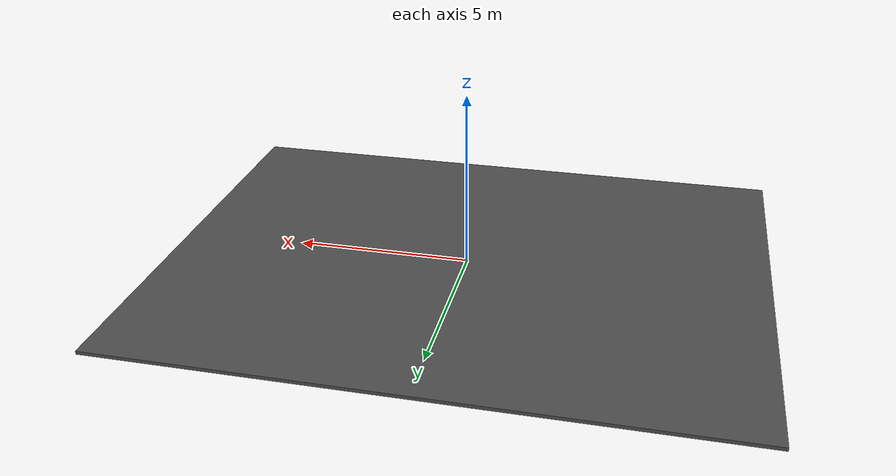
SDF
<?xml version="1.0" ?>
<sdf version="1.5">
  <model name="asphalt_plane">
    <static>true</static>
    <link name="link">
      <collision name="collision">
        <geometry>
          <box>
            <size>200 200 .1</size>
          </box>
        </geometry>
        <surface>
        <friction>
          <ode>
            <mu>10.0</mu>
            <mu2>10.0</mu2>
          </ode>
        </friction>
      </surface>
      </collision>
      <visual name="visual">
        <cast_shadows>false</cast_shadows>
        <geometry>
          <box>
            <size>17 13 .1</size>
          </box>
        </geometry>
        <material>
          <script>
            <uri>model://floor/materials/scripts</uri>
            <uri>model://floor/materials/textures</uri>
            <name>vrc/asphalt</name>
          </script>
        </material>
      </visual>
    </link>
  </model>
</sdf>
